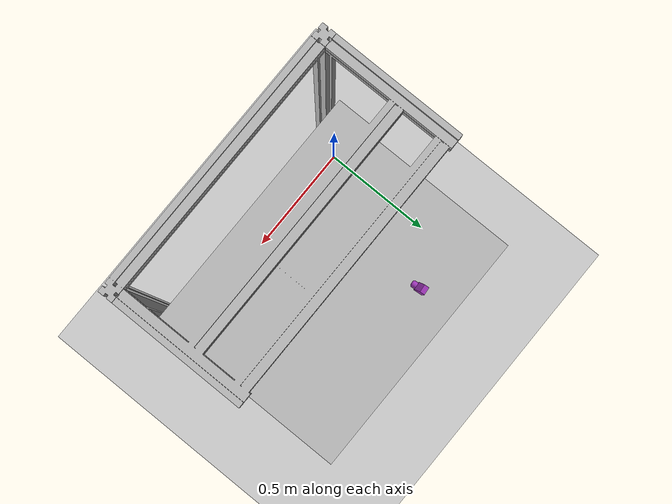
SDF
<?xml version="1.0" ?>
<sdf version="1.4">
  <world name="default">
    <physics type='ode'>
      <gravity>0 0 -9.81</gravity>
      <!-- max step size has to be a multiple of the desired task rate-->
      <max_step_size>0.001</max_step_size>
      <real_time_factor>1</real_time_factor>
    </physics>
    <!-- A global light source -->
    <include>
      <uri>model://sun</uri>
    </include>
    <!-- A ground plane -->
    <include>
      <uri>model://ground_plane</uri>
    </include>
    <include>
      <name>tavolo</name>
      <uri>model://tavolo</uri>
      <pose>0.0 0.0 0.0 0 0 0</pose>
    </include>

    <!-- BLOCKS  -->

    <include>
      <name>X1-Y2-Z2-CHAMFER</name>
      <uri>model://X1-Y2-Z2-CHAMFER</uri>
      <pose>0.307617 0.643176 0.901493 -1.503334 0. 3.24</pose>
    </include>

     <gui>
    <camera name="gzclient_camera">
      <pose>1. 3.2 2.2 0. 0.4 -1.75</pose>
    </camera>
    </gui>

  </world>
</sdf>

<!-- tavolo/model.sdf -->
<sdf version="1.4">

<physics type="ode">

      <ode>

        <constraints>
          <contact_max_correcting_vel>0.1</contact_max_correcting_vel>
          <contact_surface_layer>0.0001</contact_surface_layer>
        </constraints>
      </ode>
	<max_contacts>10</max_contacts>
	</physics>

	<model name="tavolo">
	    <static>true</static>
		<link name="link">

		     <collision name="base">
			<pose>0.5 0.4 0.85 0 0 0</pose>
			<geometry>
			  <box>
			    <size>1 0.8 0.04</size>
			  </box>
			</geometry>

				<!-- see https://gazebosim.org/tutorials?tut=physics_params&cat=physics-->
				 <surface>
				  <bounce>
				    <restitution_coefficient>0.01</restitution_coefficient>
				    <threshold>5.0</threshold>
				  </bounce>
				  <friction>
				    <ode>
				      <mu>10</mu>
				      <mu2>10</mu2>
				    </ode>
				  </friction>
				  <contact>
				     <ode>
					<max_vel>0.1</max_vel>
					<min_depth>0.001</min_depth>
				        <kp>1000000.0</kp>
					<kd>1000.0</kd>
				      </ode>
			            </contact>
				</surface>

		     	</collision>

	     			<collision name="box">
				<pose>0.5 0.08 0.95 0 0 0</pose>
				<geometry>
				  <box>
				    <size>1 0.15 0.15</size>
				  </box>
				</geometry>

				 <surface>
				  <bounce>
				    <restitution_coefficient>0.01</restitution_coefficient>
				    <threshold>5.0</threshold>
				  </bounce>
				  <friction>
				    <ode>
				      <mu>10</mu>
				      <mu2>10</mu2>
				    </ode>
				  </friction>
				  <contact>
				     <ode>
					<max_vel>0.1</max_vel>
					<min_depth>0.001</min_depth>
				        <kp>1000000.0</kp>
					<kd>1000.0</kd>
				      </ode>
			            </contact>
				</surface>

			      </collision>

			   <collision name="back">
				<pose>0.5 -0.02 1.35 1.57 0 0</pose>
				<geometry>
				  <box>
				    <size>1 1.0 0.04</size>
				  </box>
				</geometry>

				 <surface>
				  <bounce>
				    <restitution_coefficient>0.01</restitution_coefficient>
				    <threshold>5.0</threshold>
				  </bounce>
				  <friction>
				    <ode>
				      <mu>10</mu>
				      <mu2>10</mu2>
				    </ode>
				  </friction>
				  <contact>
				     <ode>
					<max_vel>0.1</max_vel>
					<min_depth>0.001</min_depth>
				        <kp>1000000.0</kp>
					<kd>1000.0</kd>
				      </ode>
			            </contact>
				</surface>

			      </collision>

			<visual name="visual">
				<geometry>
					<mesh>
						<uri>model://tavolo/mesh/tavolo.stl</uri>
                                                <scale>0.001 0.001 0.001</scale>
					</mesh>
				</geometry>
			</visual>
		</link>
	</model>
</sdf>

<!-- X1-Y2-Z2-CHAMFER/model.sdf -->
<sdf version="1.4">

	<model name="X1-Y2-Z2-CHAMFER">
		<static>false</static>
		<link name="link">

			<collision name="collision">
				<geometry>
					<mesh>
						<uri>model://X1-Y2-Z2-CHAMFER/meshes/X1-Y2-Z2-CHAMFER.stl</uri>
						<scale>1 1 1</scale>
					</mesh>
				</geometry>
			</collision>

			<visual name="visual">
				<geometry>
					<mesh>
						<uri>model://X1-Y2-Z2-CHAMFER/meshes/X1-Y2-Z2-CHAMFER.stl</uri>
						<scale>1 1 1</scale>
					</mesh>
				</geometry>

				<material>
         			 <script>
						<uri>model://materials/custom_PURPLE.material</uri>
						<name>Custom/Purple</name>
					</script>
       			</material>
			</visual>
		</link>
	</model>
</sdf>
